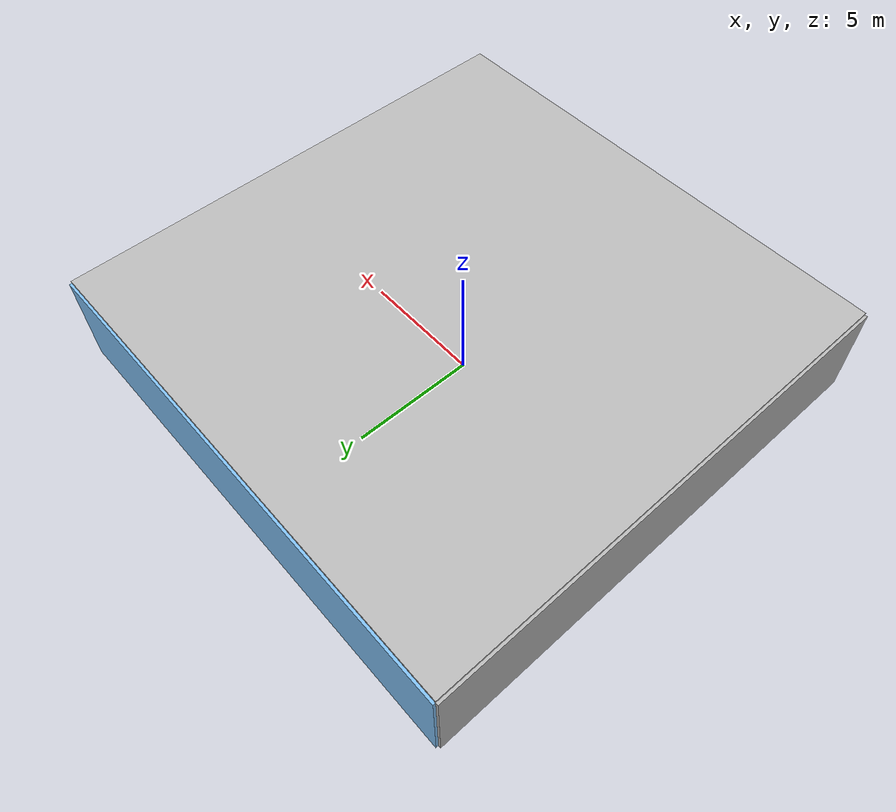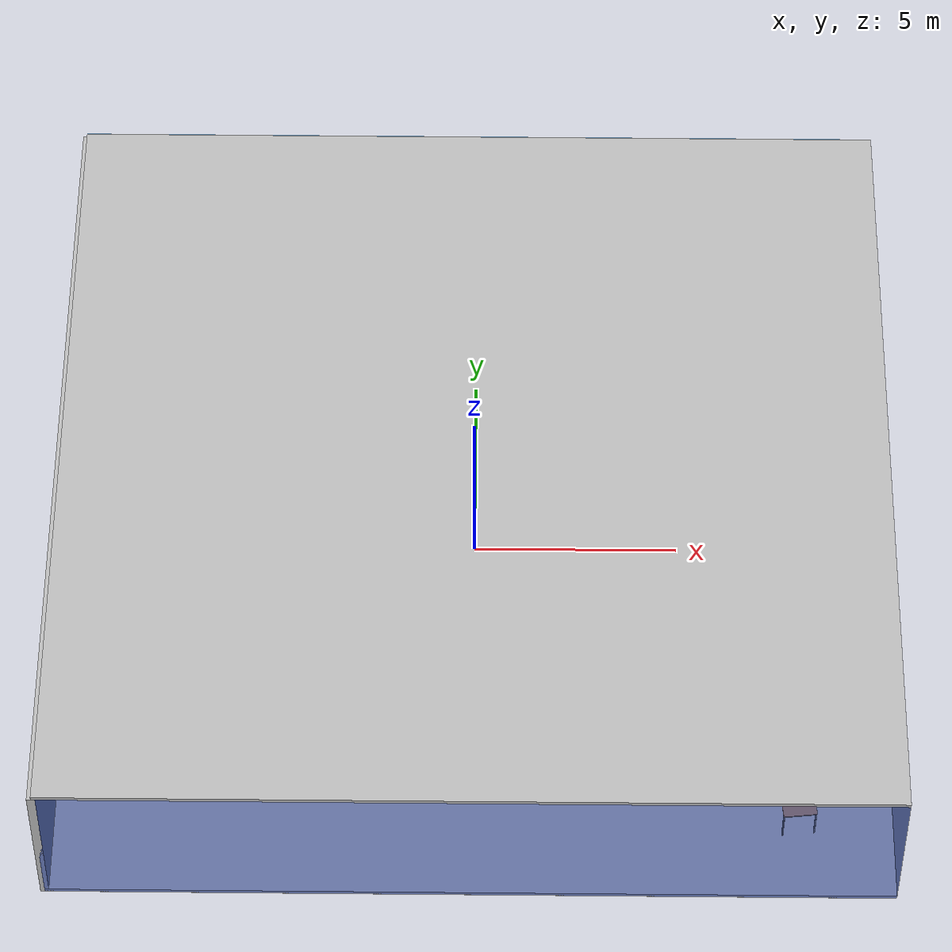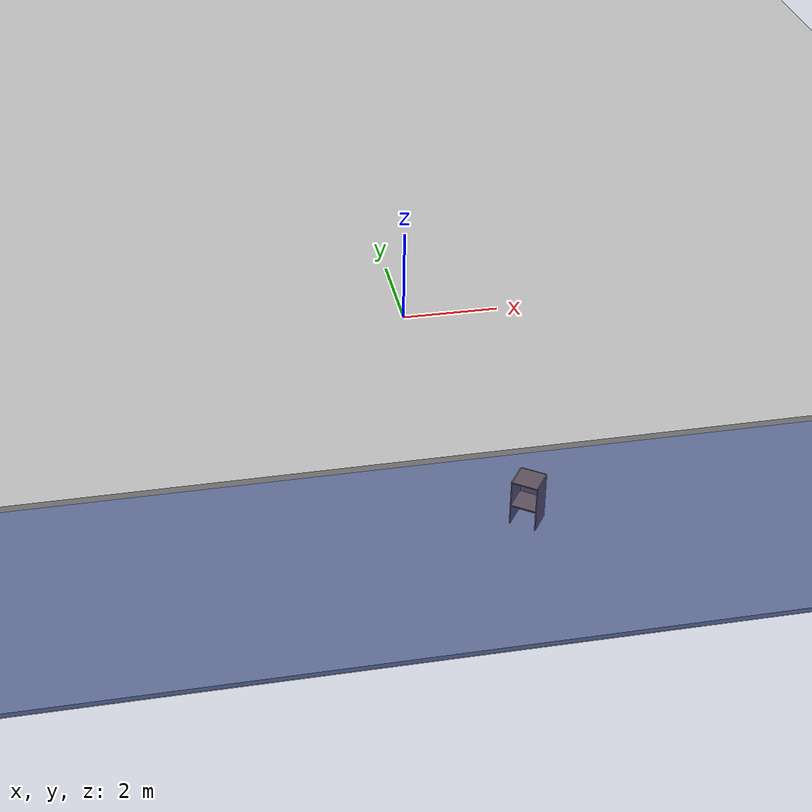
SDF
<sdf version="1.4">
 <world name="default">
  <physics type="ode">
   <max_step_size>0.001</max_step_size>
   <real_time_factor>1</real_time_factor>
   <real_time_update_rate>1000</real_time_update_rate>
   <gravity>0 0 -9.8</gravity>
  </physics>
  <scene><ambient>0.4 0.4 0.4 1</ambient><background>0.7 0.7 0.7 1</background><shadows>1</shadows></scene>
  <model name="Surrounding">
   <static>1</static>
   <link name="Ceiling">
    <collision name="Ceiling_Collision"><geometry><box><size>20 20 0.1</size></box></geometry></collision>
    <visual name="Ceiling_Visual">
     <geometry><box><size>20 20 0.1</size></box></geometry>
     <material>
      <script><uri>file://media/materials/scripts/gazebo.material</uri><name>Gazebo/PioneerBody</name></script>
     </material>
    </visual>
    <pose>0 0 4.05 0 0 0</pose>
   </link>
   <link name="Wall_South">
    <collision name="Wall_South_Collision">
     <geometry><box><size>20 0 4</size></box></geometry>
     <pose>0 0 2 0 -0 0</pose>
    </collision>
    <visual name="Wall_South_Visual">
     <pose>0 0 2 0 -0 0</pose>
     <geometry><box><size>20 0 4</size></box></geometry>
     <material>
      <script><uri>file://media/materials/scripts/gazebo.material</uri><name>Gazebo/BlueTransparent</name></script>
     </material>
    </visual>
    <velocity_decay><linear>0</linear><angular>0</angular></velocity_decay>
    <pose>0 -10 0 0 -0 0</pose>
   </link>
   <link name="Wall_East">
    <collision name="Wall_21_Collision">
     <geometry><box><size>20 0 4</size></box></geometry>
     <pose>0 0 2 0 -0 0</pose>
    </collision>
    <visual name="Wall_21_Visual">
     <pose>0 0 2 0 -0 0</pose>
     <geometry><box><size>20 0 4</size></box></geometry>
     <material>
      <script><uri>file://media/materials/scripts/gazebo.material</uri><name>Gazebo/WhiteGlow</name></script>
     </material>
    </visual>
    <velocity_decay><linear>0</linear><angular>0</angular></velocity_decay>
    <pose>10 0 0 0 -0 1.5708</pose>
   </link>
   <link name="Wall_North">
    <collision name="Wall_22_Collision">
     <geometry><box><size>20 0.2 4</size></box></geometry>
     <pose>0 0 2 0 -0 0</pose>
    </collision>
    <visual name="Wall_22_Visual">
     <pose>0 0 2 0 -0 0</pose>
     <geometry><box><size>20 0.2 4</size></box></geometry>
     <material>
      <script><uri>file://media/materials/scripts/gazebo.material</uri><name>Gazebo/SkyBlue</name></script>
     </material>
    </visual>
    <velocity_decay><linear>0</linear><angular>0</angular></velocity_decay>
    <pose>0 10 0 0 -0 0</pose>
   </link>
   <link name="Wall_West">
    <collision name="Wall_23_Collision">
     <geometry><box><size>20 0.2 4</size></box></geometry>
     <pose>0 0 2 0 -0 0</pose>
    </collision>
    <visual name="Wall_23_Visual">
     <pose>0 0 2 0 -0 0</pose>
     <geometry><box><size>20 0.2 4</size></box></geometry>
     <material>
      <script><uri>file://media/materials/scripts/gazebo.material</uri><name>Gazebo/LightOn</name></script>
     </material>
    </visual>
    <velocity_decay><linear>0</linear><angular>0</angular></velocity_decay>
    <pose>-10 0 0 0 0 -1.5708</pose>
   </link>
   <link name="Ground_link">
    <collision name="collision">
     <pose>0 0 .05 0 -0 0</pose>
     <geometry><box><size>20 20 0.1</size></box></geometry>
    </collision>
    <visual name="visual">
     <pose>0 0 .05 0 -0 0</pose>
     <geometry><box><size>20 20 0.1</size></box></geometry>
     <material>
      <script><uri>file://media/materials/scripts/gazebo.material</uri><name>Gazebo/Pioneer2Body</name></script>
     </material>
    </visual>
   </link>
   <static>1</static>
  </model>
  <spherical_coordinates>
   <surface_model>EARTH_WGS84</surface_model>
   <latitude_deg>0</latitude_deg>
   <longitude_deg>0</longitude_deg>
   <elevation>0</elevation>
   <heading_deg>0</heading_deg>
  </spherical_coordinates>
  <light name="lightball_0" type="diffuse">
   <diffuse>0.8 0.8 0.8 1</diffuse>
   <specular>0.2 0.2 0.2 1</specular>
   <attenuation>
    <range>100</range>
    <constant>0.7</constant>
    <linear>0.01</linear>
    <quadratic>0.001</quadratic>
   </attenuation>
   <direction>-0.5 0.1 -0.9</direction>
   <pose>-4.13817968579 5.20986015788 0.552191599345 0 0 0</pose>
  </light>
  <light name="lightball_1" type="diffuse">
   <diffuse>0.8 0.8 0.8 1</diffuse>
   <specular>0.2 0.2 0.2 1</specular>
   <attenuation>
    <range>100</range>
    <constant>0.7</constant>
    <linear>0.01</linear>
    <quadratic>0.001</quadratic>
   </attenuation>
   <direction>-0.5 0.1 -0.9</direction>
   <pose>-6.34249498247 -8.22957418252 1.70952585976 0 0 0</pose>
  </light>
  <light name="lightball_2" type="diffuse">
   <diffuse>0.8 0.8 0.8 1</diffuse>
   <specular>0.2 0.2 0.2 1</specular>
   <attenuation>
    <range>100</range>
    <constant>0.7</constant>
    <linear>0.01</linear>
    <quadratic>0.001</quadratic>
   </attenuation>
   <direction>-0.5 0.1 -0.9</direction>
   <pose>-7.12789159912 2.44600644679 2.16132956222 0 0 0</pose>
  </light>
  <light name="lightball_3" type="diffuse">
   <diffuse>0.8 0.8 0.8 1</diffuse>
   <specular>0.2 0.2 0.2 1</specular>
   <attenuation>
    <range>100</range>
    <constant>0.7</constant>
    <linear>0.01</linear>
    <quadratic>0.001</quadratic>
   </attenuation>
   <direction>-0.5 0.1 -0.9</direction>
   <pose>-3.7111422546 -0.718895525188 3.25024526194 0 0 0</pose>
  </light>
  <light name="lightball_4" type="diffuse">
   <diffuse>0.8 0.8 0.8 1</diffuse>
   <specular>0.2 0.2 0.2 1</specular>
   <attenuation>
    <range>100</range>
    <constant>0.7</constant>
    <linear>0.01</linear>
    <quadratic>0.001</quadratic>
   </attenuation>
   <direction>-0.5 0.1 -0.9</direction>
   <pose>8.87505270384 -9.00986589364 2.40024346999 0 0 0</pose>
  </light>
  <light name="lightball_5" type="diffuse">
   <diffuse>0.8 0.8 0.8 1</diffuse>
   <specular>0.2 0.2 0.2 1</specular>
   <attenuation>
    <range>100</range>
    <constant>0.7</constant>
    <linear>0.01</linear>
    <quadratic>0.001</quadratic>
   </attenuation>
   <direction>-0.5 0.1 -0.9</direction>
   <pose>3.65364784264 7.20298485462 3.47773244381 0 0 0</pose>
  </light>
  <light name="lightball_6" type="diffuse">
   <diffuse>0.8 0.8 0.8 1</diffuse>
   <specular>0.2 0.2 0.2 1</specular>
   <attenuation>
    <range>100</range>
    <constant>0.7</constant>
    <linear>0.01</linear>
    <quadratic>0.001</quadratic>
   </attenuation>
   <direction>-0.5 0.1 -0.9</direction>
   <pose>2.10928362947 -7.47856963326 1.78425040035 0 0 0</pose>
  </light>
  <light name="lightball_7" type="diffuse">
   <diffuse>0.8 0.8 0.8 1</diffuse>
   <specular>0.2 0.2 0.2 1</specular>
   <attenuation>
    <range>100</range>
    <constant>0.7</constant>
    <linear>0.01</linear>
    <quadratic>0.001</quadratic>
   </attenuation>
   <direction>-0.5 0.1 -0.9</direction>
   <pose>6.64142735161 -9.54997681631 1.07132044196 0 0 0</pose>
  </light>
  <light name="lightball_8" type="diffuse">
   <diffuse>0.8 0.8 0.8 1</diffuse>
   <specular>0.2 0.2 0.2 1</specular>
   <attenuation>
    <range>100</range>
    <constant>0.7</constant>
    <linear>0.01</linear>
    <quadratic>0.001</quadratic>
   </attenuation>
   <direction>-0.5 0.1 -0.9</direction>
   <pose>6.6646628766 2.61679490504 2.56201149189 0 0 0</pose>
  </light>
  <light name="lightball_9" type="diffuse">
   <diffuse>0.8 0.8 0.8 1</diffuse>
   <specular>0.2 0.2 0.2 1</specular>
   <attenuation>
    <range>100</range>
    <constant>0.7</constant>
    <linear>0.01</linear>
    <quadratic>0.001</quadratic>
   </attenuation>
   <direction>-0.5 0.1 -0.9</direction>
   <pose>6.26411147234 -0.498607573465 1.95660834461 0 0 0</pose>
  </light>
  <light name="lightball_10" type="diffuse">
   <diffuse>0.8 0.8 0.8 1</diffuse>
   <specular>0.2 0.2 0.2 1</specular>
   <attenuation>
    <range>100</range>
    <constant>0.7</constant>
    <linear>0.01</linear>
    <quadratic>0.001</quadratic>
   </attenuation>
   <direction>-0.5 0.1 -0.9</direction>
   <pose>3.89407114644 -3.92612794254 3.16009459012 0 0 0</pose>
  </light>
  <include><uri>model://table</uri><pose>-7.67959194949 7.91369261633 0 0 0 0.0579765086041</pose></include>
  <include><uri>model://table</uri><pose>-1.24488304978 -3.77786482778 0 0 0 0.128935225067</pose></include>
  <include><uri>model://cabinet</uri><pose>-1.75668645334 4.88456055427 0 0 0 0.964299252405</pose></include>
  <include><uri>model://cabinet</uri><pose>0.824506032639 -6.97322830175 0 0 0 0.95597163674</pose></include>
  <include>
   <uri>model://construction_cone</uri>
   <pose>0.891881398602 -1.69826894133 0 0 0 1.41421171799</pose>
  </include>
  <include><uri>model://table</uri><pose>7.66548210163 -7.62546367934 0 0 0 1.67914674982</pose></include>
 </world>
</sdf>

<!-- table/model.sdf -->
<sdf version="1.5">
  <model name="table">
    <static>true</static>
    <link name="link">
      <collision name="surface">
        <pose>0 0 1.0 0 0 0</pose>
        <geometry>
          <box>
            <size>1.5 0.8 0.03</size>
          </box>
        </geometry>
        <surface>
          <friction>
            <ode>
              <mu>0.6</mu>
              <mu2>0.6</mu2>
            </ode>
          </friction>
        </surface>
      </collision>
      <visual name="visual1">
        <pose>0 0 1.0 0 0 0</pose>
        <geometry>
          <box>
            <size>1.5 0.8 0.03</size>
          </box>
        </geometry>
        <material>
          <script>
            <uri>model://media/materials/scripts/gazebo.material</uri>
            <name>Gazebo/Wood</name>
          </script>
        </material>
      </visual>
      <collision name="front_left_leg">
        <pose>0.68 0.38 0.5 0 0 0</pose>
        <geometry>
          <cylinder>
            <radius>0.02</radius>
            <length>1.0</length>
          </cylinder>
        </geometry>
      </collision>
      <visual name="front_left_leg">
        <pose>0.68 0.38 0.5 0 0 0</pose>
        <geometry>
          <cylinder>
            <radius>0.02</radius>
            <length>1.0</length>
          </cylinder>
        </geometry>
        <material>
          <script>
            <uri>model://media/materials/scripts/gazebo.material</uri>
            <name>Gazebo/Grey</name>
          </script>
        </material>
      </visual>
      <collision name="front_right_leg">
        <pose>0.68 -0.38 0.5 0 0 0</pose>
        <geometry>
          <cylinder>
            <radius>0.02</radius>
            <length>1.0</length>
          </cylinder>
        </geometry>
      </collision>
      <visual name="front_right_leg">
        <pose>0.68 -0.38 0.5 0 0 0</pose>
        <geometry>
          <cylinder>
            <radius>0.02</radius>
            <length>1.0</length>
          </cylinder>
        </geometry>
        <material>
          <script>
            <uri>model://media/materials/scripts/gazebo.material</uri>
            <name>Gazebo/Grey</name>
          </script>
        </material>
      </visual>
      <collision name="back_right_leg">
        <pose>-0.68 -0.38 0.5 0 0 0</pose>
        <geometry>
          <cylinder>
            <radius>0.02</radius>
            <length>1.0</length>
          </cylinder>
        </geometry>
      </collision>
      <visual name="back_right_leg">
        <pose>-0.68 -0.38 0.5 0 0 0</pose>
        <geometry>
          <cylinder>
            <radius>0.02</radius>
            <length>1.0</length>
          </cylinder>
        </geometry>
        <material>
          <script>
            <uri>model://media/materials/scripts/gazebo.material</uri>
            <name>Gazebo/Grey</name>
          </script>
        </material>
      </visual>
      <collision name="back_left_leg">
        <pose>-0.68 0.38 0.5 0 0 0</pose>
        <geometry>
          <cylinder>
            <radius>0.02</radius>
            <length>1.0</length>
          </cylinder>
        </geometry>
      </collision>
      <visual name="back_left_leg">
        <pose>-0.68 0.38 0.5 0 0 0</pose>
        <geometry>
          <cylinder>
            <radius>0.02</radius>
            <length>1.0</length>
          </cylinder>
        </geometry>
        <material>
          <script>
            <uri>model://media/materials/scripts/gazebo.material</uri>
            <name>Gazebo/Grey</name>
          </script>
        </material>
      </visual>
    </link>
  </model>
</sdf>

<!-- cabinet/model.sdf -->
<sdf version="1.5">
  <model name="cabinet">
    <static>true</static>
    <link name="cabinet_bottom_plate">
      <inertial>
        <pose>0 0 -1 0 0 0</pose>
        <inertia>
          <ixx>2.050000</ixx>
          <ixy>0</ixy>
          <ixz>0</ixz>
          <iyy>2.050000</iyy>
          <iyz>0</iyz>
          <izz>2.050000</izz>
        </inertia>
        <mass>25.000000</mass>
      </inertial>
      <collision name="cabinet_bottom_plate_geom">
        <pose>0 0 0.010000 0 0 0</pose>
        <geometry>
          <box>
            <size>0.450000 0.450000 0.020000</size>
          </box>
        </geometry>
      </collision>
      <visual name="cabinet_bottom_plate_geom_visual">
        <pose>0 0 0.010000 0 0 0</pose>
        <geometry>
          <box>
            <size>0.450000 0.450000 0.020000</size>
          </box>
        </geometry>
        <material>
          <script>
            <uri>model://media/materials/scripts/gazebo.material</uri>
            <name>Gazebo/Wood</name>
          </script>
        </material>
      </visual>
      <collision name="cabinet_bottom_plate_geom_cabinet_back_plate">
        <pose>0.235000 0 0.510000 0 0 0</pose>
        <geometry>
          <box>
            <size>0.020000 0.450000 1.020000</size>
          </box>
        </geometry>
      </collision>
      <visual name="cabinet_bottom_plate_geom_cabinet_back_plate_visual">
        <pose>0.235000 0 0.510000 0 0 0</pose>
        <geometry>
          <box>
            <size>0.020000 0.450000 1.020000</size>
          </box>
        </geometry>
        <material>
          <script>
            <uri>model://media/materials/scripts/gazebo.material</uri>
            <name>Gazebo/Wood</name>
          </script>
        </material>
      </visual>
      <collision name="cabinet_bottom_plate_geom_cabinet_left_plate">
        <pose>0 0.235000 0.510000 0 0 0</pose>
        <geometry>
          <box>
            <size>0.450000 0.020000 1.020000</size>
          </box>
        </geometry>
      </collision>
      <visual name="cabinet_bottom_plate_geom_cabinet_left_plate_visual">
        <pose>0 0.235000 0.510000 0 0 0</pose>
        <geometry>
          <box>
            <size>0.450000 0.020000 1.020000</size>
          </box>
        </geometry>
        <material>
          <script>
            <uri>model://media/materials/scripts/gazebo.material</uri>
            <name>Gazebo/Wood</name>
          </script>
        </material>
      </visual>
      <collision name="cabinet_bottom_plate_geom_cabinet_middle_plate">
        <pose>0 0 0.510000 0 0 0</pose>
        <geometry>
          <box>
            <size>0.450000 0.450000 0.020000</size>
          </box>
        </geometry>
      </collision>
      <visual name="cabinet_bottom_plate_geom_cabinet_middle_plate_visual">
        <pose>0 0 0.510000 0 0 0</pose>
        <geometry>
          <box>
            <size>0.450000 0.450000 0.020000</size>
          </box>
        </geometry>
        <material>
          <script>
            <uri>model://media/materials/scripts/gazebo.material</uri>
            <name>Gazebo/Wood</name>
          </script>
        </material>
      </visual>
      <collision name="cabinet_bottom_plate_geom_cabinet_right_plate">
        <pose>0 -0.235000 0.510000 0 0 0</pose>
        <geometry>
          <box>
            <size>0.450000 0.020000 1.020000</size>
          </box>
        </geometry>
      </collision>
      <visual name="cabinet_bottom_plate_geom_cabinet_right_plate_visual">
        <pose>0 -0.235000 0.510000 0 0 0</pose>
        <geometry>
          <box>
            <size>0.450000 0.020000 1.020000</size>
          </box>
        </geometry>
        <material>
          <script>
            <uri>model://media/materials/scripts/gazebo.material</uri>
            <name>Gazebo/Wood</name>
          </script>
        </material>
      </visual>
      <collision name="cabinet_bottom_plate_geom_cabinet_top_plate">
        <pose>0 0 1.010000 0 0 0</pose>
        <geometry>
          <box>
            <size>0.450000 0.450000 0.020000</size>
          </box>
        </geometry>
      </collision>
      <visual name="cabinet_bottom_plate_geom_cabinet_top_plate_visual">
        <pose>0 0 1.010000 0 0 0</pose>
        <geometry>
          <box>
            <size>0.450000 0.450000 0.020000</size>
          </box>
        </geometry>
        <material>
          <script>
            <uri>model://media/materials/scripts/gazebo.material</uri>
            <name>Gazebo/Wood</name>
          </script>
        </material>
      </visual>
    </link>
  </model>
</sdf>

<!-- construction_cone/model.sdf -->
<sdf version="1.5">
  <model name="Construction Cone">
    <link name="link">
      <collision name="collision">
        <geometry>
          <mesh>
            <scale>10 10 10</scale>
            <uri>file://isr-testbed/construction_cone/meshes/construction_cone.dae</uri>
          </mesh>
        </geometry>
      </collision>
      <visual name="visual">
        <geometry>
          <mesh>
            <scale>10 10 10</scale>
            <uri>file://isr-testbed/construction_cone/meshes/construction_cone.dae</uri>
          </mesh>
        </geometry>
      </visual>
    </link>
  </model>
</sdf>
